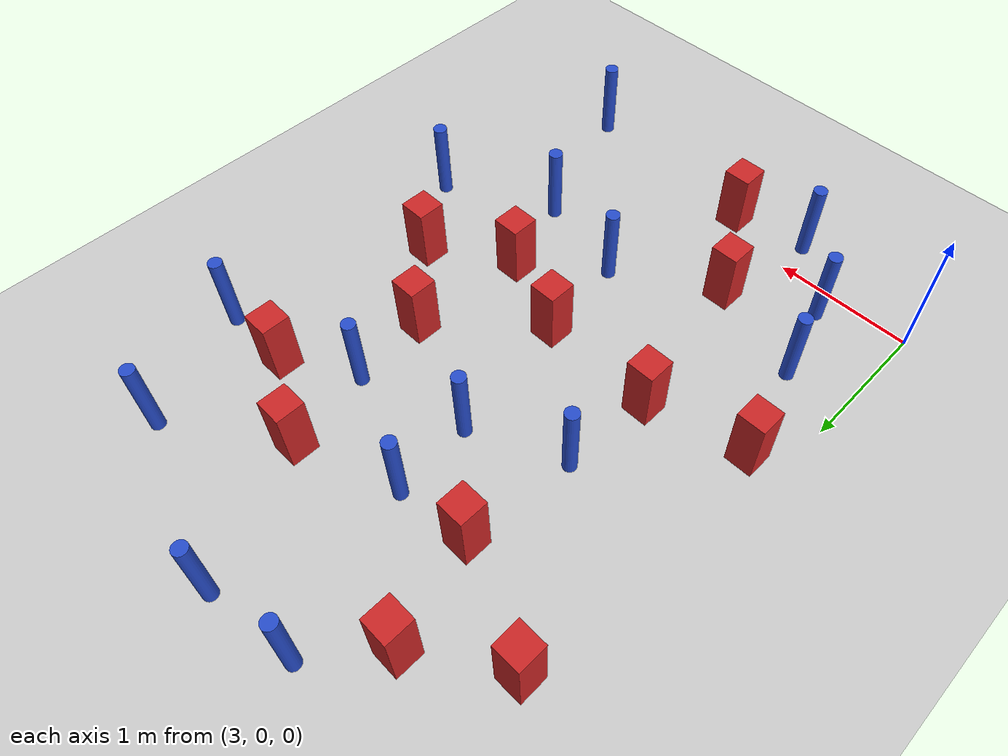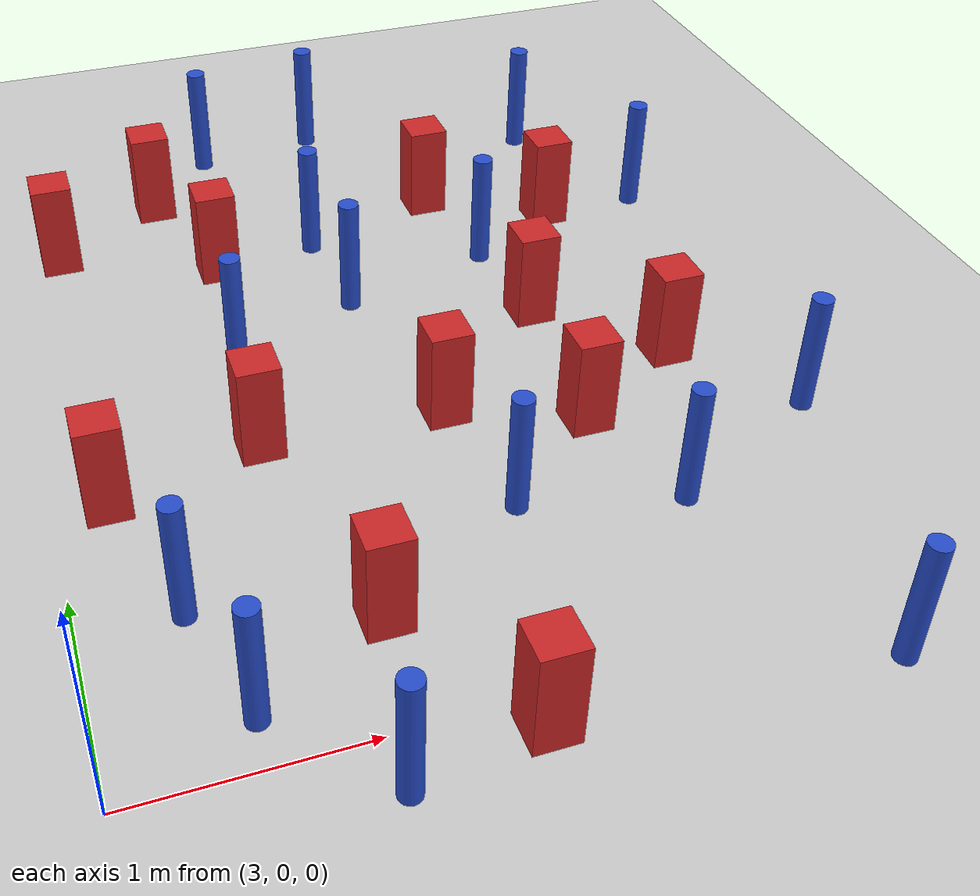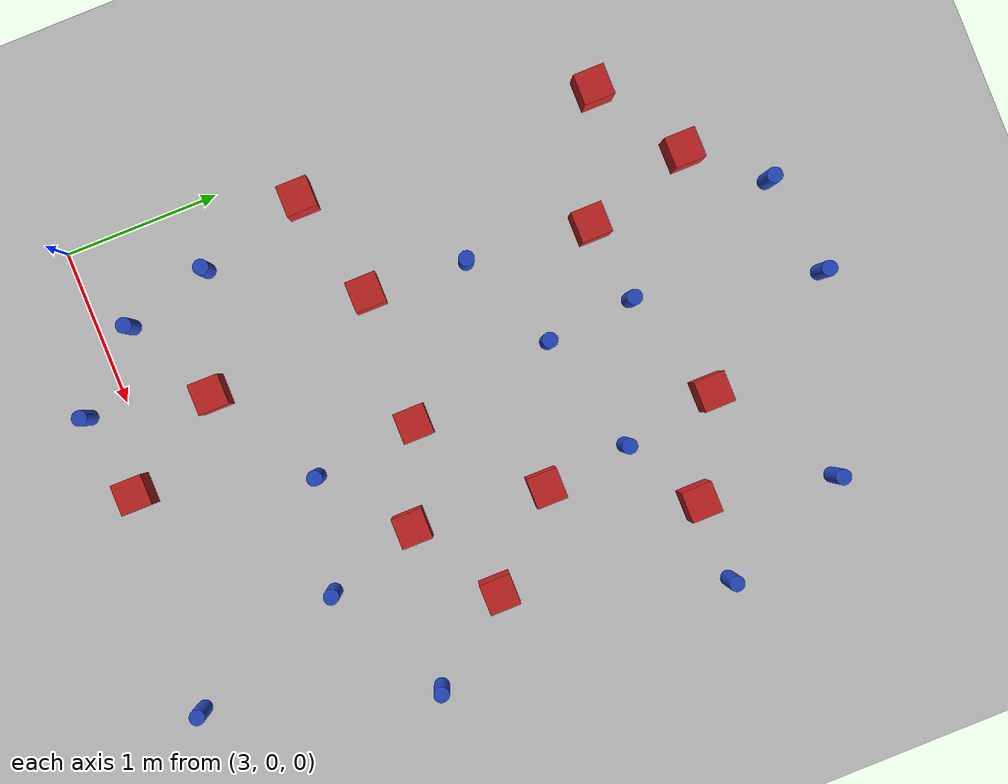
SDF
<sdf version="1.6">
 <world name="default">
  <model name="ground_plane">
   <static>1</static>
   <link name="link">
    <collision name="collision">
     <geometry><plane><normal>0 0 1</normal><size>100 100</size></plane></geometry>
     <surface><friction><ode><mu>100</mu><mu2>50</mu2></ode></friction></surface>
    </collision>
    <visual name="visual">
     <cast_shadows>0</cast_shadows>
     <geometry><plane><normal>0 0 1</normal><size>100 100</size></plane></geometry>
     <material>
      <ambient>1.0 1.0 1.0 1.0</ambient>
      <diffuse>0.8 0.8 0.8 1.0</diffuse>
      <specular>0.01 0.01 0.01 1.000000</specular>
     </material>
    </visual>
   </link>
  </model>
  <model name="pole_obstacle1">
   <static>true</static>
   <pose>5.58992759345 0.771042951277 -3.09024884793e-07 -7.19054271912e-07 -2.11315075134e-07 -1.93935509265e-07</pose>
   <link name="link">
    <pose>0 0 0.3 0 -0 0</pose>
    <inertial>
     <mass>1</mass>
     <inertia><ixx>0.145833</ixx><ixy>0</ixy><ixz>0</ixz><iyy>0.145833</iyy><iyz>0</iyz><izz>0.125</izz></inertia>
    </inertial>
    <collision name="collision">
     <geometry><cylinder><radius>0.05</radius><length>.6</length></cylinder></geometry>
    </collision>
    <visual name="visual">
     <geometry><cylinder><radius>0.05</radius><length>.6</length></cylinder></geometry>
     <material>
      <script><name>Gazebo/Blue</name><uri>file://media/materials/scripts/gazebo.material</uri></script>
     </material>
    </visual>
   </link>
  </model>
  <model name="square_post_obstacle13">
   <static>true</static>
   <pose>3.27607757877 3.43404862615 -4.36207812815e-07 3.75137919937e-06 9.77721102514e-07 2.47381364184e-05</pose>
   <link name="link">
    <pose>0 0 0.25 0 -0 0</pose>
    <inertial>
     <mass>100</mass>
     <inertia>
      <ixx>0.166667</ixx>
      <ixy>0</ixy>
      <ixz>0</ixz>
      <iyy>0.166667</iyy>
      <iyz>0</iyz>
      <izz>0.166667</izz>
     </inertia>
    </inertial>
    <collision name="collision"><geometry><box><size>.2 .2 .5</size></box></geometry></collision>
    <visual name="visual">
     <geometry><box><size>.2 .2 .5</size></box></geometry>
     <material>
      <script><name>Gazebo/Red</name><uri>file://media/materials/scripts/gazebo.material</uri></script>
     </material>
    </visual>
   </link>
  </model>
  <model name="pole_obstacle15">
   <static>true</static>
   <pose>6.39323773252 1.17414004297 -3.09024884793e-07 -7.19054271912e-07 -2.11315075124e-07 -1.93935509261e-07</pose>
   <link name="link">
    <pose>0 0 0.3 0 -0 0</pose>
    <inertial>
     <mass>1</mass>
     <inertia><ixx>0.145833</ixx><ixy>0</ixy><ixz>0</ixz><iyy>0.145833</iyy><iyz>0</iyz><izz>0.125</izz></inertia>
    </inertial>
    <collision name="collision">
     <geometry><cylinder><radius>0.05</radius><length>.6</length></cylinder></geometry>
    </collision>
    <visual name="visual">
     <geometry><cylinder><radius>0.05</radius><length>.6</length></cylinder></geometry>
     <material>
      <script><name>Gazebo/Blue</name><uri>file://media/materials/scripts/gazebo.material</uri></script>
     </material>
    </visual>
   </link>
  </model>
  <model name="square_post_obstacle31">
   <static>true</static>
   <pose>4.79556955324 1.62854520627 -4.36207812815e-07 3.75137919937e-06 9.77721102514e-07 2.47381364184e-05</pose>
   <link name="link">
    <pose>0 0 0.25 0 -0 0</pose>
    <inertial>
     <mass>100</mass>
     <inertia>
      <ixx>0.166667</ixx>
      <ixy>0</ixy>
      <ixz>0</ixz>
      <iyy>0.166667</iyy>
      <iyz>0</iyz>
      <izz>0.166667</izz>
     </inertia>
    </inertial>
    <collision name="collision"><geometry><box><size>.2 .2 .5</size></box></geometry></collision>
    <visual name="visual">
     <geometry><box><size>.2 .2 .5</size></box></geometry>
     <material>
      <script><name>Gazebo/Red</name><uri>file://media/materials/scripts/gazebo.material</uri></script>
     </material>
    </visual>
   </link>
  </model>
  <model name="pole_obstacle36">
   <static>true</static>
   <pose>4.86189972478 4.3403535434 -3.09024884793e-07 -7.19054271911e-07 -2.1131507516e-07 -1.93935509277e-07</pose>
   <link name="link">
    <pose>0 0 0.3 0 -0 0</pose>
    <inertial>
     <mass>1</mass>
     <inertia><ixx>0.145833</ixx><ixy>0</ixy><ixz>0</ixz><iyy>0.145833</iyy><iyz>0</iyz><izz>0.125</izz></inertia>
    </inertial>
    <collision name="collision">
     <geometry><cylinder><radius>0.05</radius><length>.6</length></cylinder></geometry>
    </collision>
    <visual name="visual">
     <geometry><cylinder><radius>0.05</radius><length>.6</length></cylinder></geometry>
     <material>
      <script><name>Gazebo/Blue</name><uri>file://media/materials/scripts/gazebo.material</uri></script>
     </material>
    </visual>
   </link>
  </model>
  <model name="square_post_obstacle36">
   <static>true</static>
   <pose>4.15909963592 0.525989410992 -4.36207812815e-07 3.75137919937e-06 9.77721102514e-07 2.47381364184e-05</pose>
   <link name="link">
    <pose>0 0 0.25 0 -0 0</pose>
    <inertial>
     <mass>100</mass>
     <inertia>
      <ixx>0.166667</ixx>
      <ixy>0</ixy>
      <ixz>0</ixz>
      <iyy>0.166667</iyy>
      <iyz>0</iyz>
      <izz>0.166667</izz>
     </inertia>
    </inertial>
    <collision name="collision"><geometry><box><size>.2 .2 .5</size></box></geometry></collision>
    <visual name="visual">
     <geometry><box><size>.2 .2 .5</size></box></geometry>
     <material>
      <script><name>Gazebo/Red</name><uri>file://media/materials/scripts/gazebo.material</uri></script>
     </material>
    </visual>
   </link>
  </model>
  <model name="pole_obstacle38">
   <static>true</static>
   <pose>4.20906245238 4.24223437994 -3.09024884793e-07 -7.19054271911e-07 -2.1131507516e-07 -1.93935509277e-07</pose>
   <link name="link">
    <pose>0 0 0.3 0 -0 0</pose>
    <inertial>
     <mass>1</mass>
     <inertia><ixx>0.145833</ixx><ixy>0</ixy><ixz>0</ixz><iyy>0.145833</iyy><iyz>0</iyz><izz>0.125</izz></inertia>
    </inertial>
    <collision name="collision">
     <geometry><cylinder><radius>0.05</radius><length>.6</length></cylinder></geometry>
    </collision>
    <visual name="visual">
     <geometry><cylinder><radius>0.05</radius><length>.6</length></cylinder></geometry>
     <material>
      <script><name>Gazebo/Blue</name><uri>file://media/materials/scripts/gazebo.material</uri></script>
     </material>
    </visual>
   </link>
  </model>
  <model name="square_post_obstacle41">
   <static>true</static>
   <pose>3.23152151646 1.48305024463 -4.36207812815e-07 3.75137919937e-06 9.77721102514e-07 2.47381364184e-05</pose>
   <link name="link">
    <pose>0 0 0.25 0 -0 0</pose>
    <inertial>
     <mass>100</mass>
     <inertia>
      <ixx>0.166667</ixx>
      <ixy>0</ixy>
      <ixz>0</ixz>
      <iyy>0.166667</iyy>
      <iyz>0</iyz>
      <izz>0.166667</izz>
     </inertia>
    </inertial>
    <collision name="collision"><geometry><box><size>.2 .2 .5</size></box></geometry></collision>
    <visual name="visual">
     <geometry><box><size>.2 .2 .5</size></box></geometry>
     <material>
      <script><name>Gazebo/Red</name><uri>file://media/materials/scripts/gazebo.material</uri></script>
     </material>
    </visual>
   </link>
  </model>
  <model name="square_post_obstacle44">
   <static>true</static>
   <pose>4.556816064 -0.141495539214 -4.36207812815e-07 3.75137919937e-06 9.77721102514e-07 2.47381364184e-05</pose>
   <link name="link">
    <pose>0 0 0.25 0 -0 0</pose>
    <inertial>
     <mass>100</mass>
     <inertia>
      <ixx>0.166667</ixx>
      <ixy>0</ixy>
      <ixz>0</ixz>
      <iyy>0.166667</iyy>
      <iyz>0</iyz>
      <izz>0.166667</izz>
     </inertia>
    </inertial>
    <collision name="collision"><geometry><box><size>.2 .2 .5</size></box></geometry></collision>
    <visual name="visual">
     <geometry><box><size>.2 .2 .5</size></box></geometry>
     <material>
      <script><name>Gazebo/Red</name><uri>file://media/materials/scripts/gazebo.material</uri></script>
     </material>
    </visual>
   </link>
  </model>
  <model name="pole_obstacle53">
   <static>true</static>
   <pose>3.98057424473 2.30687734638 -3.09024884793e-07 -7.19054271912e-07 -2.11315075162e-07 -1.93935509281e-07</pose>
   <link name="link">
    <pose>0 0 0.3 0 -0 0</pose>
    <inertial>
     <mass>1</mass>
     <inertia><ixx>0.145833</ixx><ixy>0</ixy><ixz>0</ixz><iyy>0.145833</iyy><iyz>0</iyz><izz>0.125</izz></inertia>
    </inertial>
    <collision name="collision">
     <geometry><cylinder><radius>0.05</radius><length>.6</length></cylinder></geometry>
    </collision>
    <visual name="visual">
     <geometry><cylinder><radius>0.05</radius><length>.6</length></cylinder></geometry>
     <material>
      <script><name>Gazebo/Blue</name><uri>file://media/materials/scripts/gazebo.material</uri></script>
     </material>
    </visual>
   </link>
  </model>
  <model name="square_post_obstacle61">
   <static>true</static>
   <pose>3.84370409949 3.80862990596 -4.36207812815e-07 3.75137919937e-06 9.77721102514e-07 2.47381364184e-05</pose>
   <link name="link">
    <pose>0 0 0.25 0 -0 0</pose>
    <inertial>
     <mass>100</mass>
     <inertia>
      <ixx>0.166667</ixx>
      <ixy>0</ixy>
      <ixz>0</ixz>
      <iyy>0.166667</iyy>
      <iyz>0</iyz>
      <izz>0.166667</izz>
     </inertia>
    </inertial>
    <collision name="collision"><geometry><box><size>.2 .2 .5</size></box></geometry></collision>
    <visual name="visual">
     <geometry><box><size>.2 .2 .5</size></box></geometry>
     <material>
      <script><name>Gazebo/Red</name><uri>file://media/materials/scripts/gazebo.material</uri></script>
     </material>
    </visual>
   </link>
  </model>
  <model name="pole_obstacle58">
   <static>true</static>
   <pose>4.87939695554 0.945920177138 -3.09024884793e-07 -7.19054271912e-07 -2.11315075134e-07 -1.93935509265e-07</pose>
   <link name="link">
    <pose>0 0 0.3 0 -0 0</pose>
    <inertial>
     <mass>1</mass>
     <inertia><ixx>0.145833</ixx><ixy>0</ixy><ixz>0</ixz><iyy>0.145833</iyy><iyz>0</iyz><izz>0.125</izz></inertia>
    </inertial>
    <collision name="collision">
     <geometry><cylinder><radius>0.05</radius><length>.6</length></cylinder></geometry>
    </collision>
    <visual name="visual">
     <geometry><cylinder><radius>0.05</radius><length>.6</length></cylinder></geometry>
     <material>
      <script><name>Gazebo/Blue</name><uri>file://media/materials/scripts/gazebo.material</uri></script>
     </material>
    </visual>
   </link>
  </model>
  <model name="pole_obstacle66">
   <static>true</static>
   <pose>4.58161983679 3.17085954249 -3.09024884793e-07 -7.19054271912e-07 -2.11315075144e-07 -1.93935509269e-07</pose>
   <link name="link">
    <pose>0 0 0.3 0 -0 0</pose>
    <inertial>
     <mass>1</mass>
     <inertia><ixx>0.145833</ixx><ixy>0</ixy><ixz>0</ixz><iyy>0.145833</iyy><iyz>0</iyz><izz>0.125</izz></inertia>
    </inertial>
    <collision name="collision">
     <geometry><cylinder><radius>0.05</radius><length>.6</length></cylinder></geometry>
    </collision>
    <visual name="visual">
     <geometry><cylinder><radius>0.05</radius><length>.6</length></cylinder></geometry>
     <material>
      <script><name>Gazebo/Blue</name><uri>file://media/materials/scripts/gazebo.material</uri></script>
     </material>
    </visual>
   </link>
  </model>
  <model name="square_post_obstacle74">
   <static>true</static>
   <pose>5.39063758483 1.37951681456 -4.36207812815e-07 3.75137919937e-06 9.77721102514e-07 2.47381364184e-05</pose>
   <link name="link">
    <pose>0 0 0.25 0 -0 0</pose>
    <inertial>
     <mass>100</mass>
     <inertia>
      <ixx>0.166667</ixx>
      <ixy>0</ixy>
      <ixz>0</ixz>
      <iyy>0.166667</iyy>
      <iyz>0</iyz>
      <izz>0.166667</izz>
     </inertia>
    </inertial>
    <collision name="collision"><geometry><box><size>.2 .2 .5</size></box></geometry></collision>
    <visual name="visual">
     <geometry><box><size>.2 .2 .5</size></box></geometry>
     <material>
      <script><name>Gazebo/Red</name><uri>file://media/materials/scripts/gazebo.material</uri></script>
     </material>
    </visual>
   </link>
  </model>
  <model name="pole_obstacle72">
   <static>true</static>
   <pose>5.96688714051 -0.261945953001 -3.09024884793e-07 -7.19054271912e-07 -2.1131507512e-07 -1.93935509259e-07</pose>
   <link name="link">
    <pose>0 0 0.3 0 -0 0</pose>
    <inertial>
     <mass>1</mass>
     <inertia><ixx>0.145833</ixx><ixy>0</ixy><ixz>0</ixz><iyy>0.145833</iyy><iyz>0</iyz><izz>0.125</izz></inertia>
    </inertial>
    <collision name="collision">
     <geometry><cylinder><radius>0.05</radius><length>.6</length></cylinder></geometry>
    </collision>
    <visual name="visual">
     <geometry><cylinder><radius>0.05</radius><length>.6</length></cylinder></geometry>
     <material>
      <script><name>Gazebo/Blue</name><uri>file://media/materials/scripts/gazebo.material</uri></script>
     </material>
    </visual>
   </link>
  </model>
  <model name="square_post_obstacle82">
   <static>true</static>
   <pose>5.46969585893 2.24189731197 -4.36207812815e-07 3.75137919937e-06 9.77721102514e-07 2.47381364184e-05</pose>
   <link name="link">
    <pose>0 0 0.25 0 -0 0</pose>
    <inertial>
     <mass>100</mass>
     <inertia>
      <ixx>0.166667</ixx>
      <ixy>0</ixy>
      <ixz>0</ixz>
      <iyy>0.166667</iyy>
      <iyz>0</iyz>
      <izz>0.166667</izz>
     </inertia>
    </inertial>
    <collision name="collision"><geometry><box><size>.2 .2 .5</size></box></geometry></collision>
    <visual name="visual">
     <geometry><box><size>.2 .2 .5</size></box></geometry>
     <material>
      <script><name>Gazebo/Red</name><uri>file://media/materials/scripts/gazebo.material</uri></script>
     </material>
    </visual>
   </link>
  </model>
  <model name="square_post_obstacle88">
   <static>true</static>
   <pose>3.9352729879 1.65612882925 -4.36207812815e-07 3.75137919937e-06 9.77721102514e-07 2.47381364184e-05</pose>
   <link name="link">
    <pose>0 0 0.25 0 -0 0</pose>
    <inertial>
     <mass>100</mass>
     <inertia>
      <ixx>0.166667</ixx>
      <ixy>0</ixy>
      <ixz>0</ixz>
      <iyy>0.166667</iyy>
      <iyz>0</iyz>
      <izz>0.166667</izz>
     </inertia>
    </inertial>
    <collision name="collision"><geometry><box><size>.2 .2 .5</size></box></geometry></collision>
    <visual name="visual">
     <geometry><box><size>.2 .2 .5</size></box></geometry>
     <material>
      <script><name>Gazebo/Red</name><uri>file://media/materials/scripts/gazebo.material</uri></script>
     </material>
    </visual>
   </link>
  </model>
  <model name="square_post_obstacle95">
   <static>true</static>
   <pose>5.3009375738 3.41798213768 -4.36207812815e-07 3.75137919937e-06 9.77721102514e-07 2.47381364184e-05</pose>
   <link name="link">
    <pose>0 0 0.25 0 -0 0</pose>
    <inertial>
     <mass>100</mass>
     <inertia>
      <ixx>0.166667</ixx>
      <ixy>0</ixy>
      <ixz>0</ixz>
      <iyy>0.166667</iyy>
      <iyz>0</iyz>
      <izz>0.166667</izz>
     </inertia>
    </inertial>
    <collision name="collision"><geometry><box><size>.2 .2 .5</size></box></geometry></collision>
    <visual name="visual">
     <geometry><box><size>.2 .2 .5</size></box></geometry>
     <material>
      <script><name>Gazebo/Red</name><uri>file://media/materials/scripts/gazebo.material</uri></script>
     </material>
    </visual>
   </link>
  </model>
  <model name="pole_obstacle108">
   <static>true</static>
   <pose>6.4364949122 3.09810819985 -3.09024884793e-07 -7.19054271912e-07 -2.11315075144e-07 -1.93935509269e-07</pose>
   <link name="link">
    <pose>0 0 0.3 0 -0 0</pose>
    <inertial>
     <mass>1</mass>
     <inertia><ixx>0.145833</ixx><ixy>0</ixy><ixz>0</ixz><iyy>0.145833</iyy><iyz>0</iyz><izz>0.125</izz></inertia>
    </inertial>
    <collision name="collision">
     <geometry><cylinder><radius>0.05</radius><length>.6</length></cylinder></geometry>
    </collision>
    <visual name="visual">
     <geometry><cylinder><radius>0.05</radius><length>.6</length></cylinder></geometry>
     <material>
      <script><name>Gazebo/Blue</name><uri>file://media/materials/scripts/gazebo.material</uri></script>
     </material>
    </visual>
   </link>
  </model>
  <model name="square_post_obstacle96">
   <static>true</static>
   <pose>5.9679975727 1.73093672961 -4.36207812815e-07 3.75137919937e-06 9.77721102514e-07 2.47381364184e-05</pose>
   <link name="link">
    <pose>0 0 0.25 0 -0 0</pose>
    <inertial>
     <mass>100</mass>
     <inertia>
      <ixx>0.166667</ixx>
      <ixy>0</ixy>
      <ixz>0</ixz>
      <iyy>0.166667</iyy>
      <iyz>0</iyz>
      <izz>0.166667</izz>
     </inertia>
    </inertial>
    <collision name="collision"><geometry><box><size>.2 .2 .5</size></box></geometry></collision>
    <visual name="visual">
     <geometry><box><size>.2 .2 .5</size></box></geometry>
     <material>
      <script><name>Gazebo/Red</name><uri>file://media/materials/scripts/gazebo.material</uri></script>
     </material>
    </visual>
   </link>
  </model>
  <model name="square_post_obstacle127">
   <static>true</static>
   <pose>5.90309375543 3.09312610509 -4.36207812815e-07 3.75137919937e-06 9.77721102514e-07 2.47381364184e-05</pose>
   <link name="link">
    <pose>0 0 0.25 0 -0 0</pose>
    <inertial>
     <mass>100</mass>
     <inertia>
      <ixx>0.166667</ixx>
      <ixy>0</ixy>
      <ixz>0</ixz>
      <iyy>0.166667</iyy>
      <iyz>0</iyz>
      <izz>0.166667</izz>
     </inertia>
    </inertial>
    <collision name="collision"><geometry><box><size>.2 .2 .5</size></box></geometry></collision>
    <visual name="visual">
     <geometry><box><size>.2 .2 .5</size></box></geometry>
     <material>
      <script><name>Gazebo/Red</name><uri>file://media/materials/scripts/gazebo.material</uri></script>
     </material>
    </visual>
   </link>
  </model>
  <model name="pole_obstacle148">
   <static>true</static>
   <pose>4.63346478088 2.59417303646 -3.09024884793e-07 -7.19054271912e-07 -2.11315075144e-07 -1.93935509269e-07</pose>
   <link name="link">
    <pose>0 0 0.3 0 -0 0</pose>
    <inertial>
     <mass>1</mass>
     <inertia><ixx>0.145833</ixx><ixy>0</ixy><ixz>0</ixz><iyy>0.145833</iyy><iyz>0</iyz><izz>0.125</izz></inertia>
    </inertial>
    <collision name="collision">
     <geometry><cylinder><radius>0.05</radius><length>.6</length></cylinder></geometry>
    </collision>
    <visual name="visual">
     <geometry><cylinder><radius>0.05</radius><length>.6</length></cylinder></geometry>
     <material>
      <script><name>Gazebo/Blue</name><uri>file://media/materials/scripts/gazebo.material</uri></script>
     </material>
    </visual>
   </link>
  </model>
  <model name="pole_obstacle157">
   <static>true</static>
   <pose>3.57901939438 0.213476796068 -3.09024884793e-07 -7.19054271912e-07 -2.11315075123e-07 -1.9393550926e-07</pose>
   <link name="link">
    <pose>0 0 0.3 0 -0 0</pose>
    <inertial>
     <mass>1</mass>
     <inertia><ixx>0.145833</ixx><ixy>0</ixy><ixz>0</ixz><iyy>0.145833</iyy><iyz>0</iyz><izz>0.125</izz></inertia>
    </inertial>
    <collision name="collision">
     <geometry><cylinder><radius>0.05</radius><length>.6</length></cylinder></geometry>
    </collision>
    <visual name="visual">
     <geometry><cylinder><radius>0.05</radius><length>.6</length></cylinder></geometry>
     <material>
      <script><name>Gazebo/Blue</name><uri>file://media/materials/scripts/gazebo.material</uri></script>
     </material>
    </visual>
   </link>
  </model>
  <model name="pole_obstacle161">
   <static>true</static>
   <pose>5.41454715701 2.80429465588 -3.09024884793e-07 -7.19054271912e-07 -2.11315075144e-07 -1.93935509269e-07</pose>
   <link name="link">
    <pose>0 0 0.3 0 -0 0</pose>
    <inertial>
     <mass>1</mass>
     <inertia><ixx>0.145833</ixx><ixy>0</ixy><ixz>0</ixz><iyy>0.145833</iyy><iyz>0</iyz><izz>0.125</izz></inertia>
    </inertial>
    <collision name="collision">
     <geometry><cylinder><radius>0.05</radius><length>.6</length></cylinder></geometry>
    </collision>
    <visual name="visual">
     <geometry><cylinder><radius>0.05</radius><length>.6</length></cylinder></geometry>
     <material>
      <script><name>Gazebo/Blue</name><uri>file://media/materials/scripts/gazebo.material</uri></script>
     </material>
    </visual>
   </link>
  </model>
  <model name="square_post_obstacle168">
   <static>true</static>
   <pose>4.05459076122 3.10582809153 -4.36207812815e-07 3.75137919937e-06 9.77721102514e-07 2.47381364184e-05</pose>
   <link name="link">
    <pose>0 0 0.25 0 -0 0</pose>
    <inertial>
     <mass>100</mass>
     <inertia>
      <ixx>0.166667</ixx>
      <ixy>0</ixy>
      <ixz>0</ixz>
      <iyy>0.166667</iyy>
      <iyz>0</iyz>
      <izz>0.166667</izz>
     </inertia>
    </inertial>
    <collision name="collision"><geometry><box><size>.2 .2 .5</size></box></geometry></collision>
    <visual name="visual">
     <geometry><box><size>.2 .2 .5</size></box></geometry>
     <material>
      <script><name>Gazebo/Red</name><uri>file://media/materials/scripts/gazebo.material</uri></script>
     </material>
    </visual>
   </link>
  </model>
  <model name="pole_obstacle184">
   <static>true</static>
   <pose>4.00522633401 -0.247419083027 -3.09024884793e-07 -7.19054271912e-07 -2.11315075129e-07 -1.93935509263e-07</pose>
   <link name="link">
    <pose>0 0 0.3 0 -0 0</pose>
    <inertial>
     <mass>1</mass>
     <inertia><ixx>0.145833</ixx><ixy>0</ixy><ixz>0</ixz><iyy>0.145833</iyy><iyz>0</iyz><izz>0.125</izz></inertia>
    </inertial>
    <collision name="collision">
     <geometry><cylinder><radius>0.05</radius><length>.6</length></cylinder></geometry>
    </collision>
    <visual name="visual">
     <geometry><cylinder><radius>0.05</radius><length>.6</length></cylinder></geometry>
     <material>
      <script><name>Gazebo/Blue</name><uri>file://media/materials/scripts/gazebo.material</uri></script>
     </material>
    </visual>
   </link>
  </model>
  <model name="pole_obstacle188">
   <static>true</static>
   <pose>3.42457672335 0.781788411174 -3.09024884793e-07 -7.19054271913e-07 -2.1131507512e-07 -1.93935509259e-07</pose>
   <link name="link">
    <pose>0 0 0.3 0 -0 0</pose>
    <inertial>
     <mass>1</mass>
     <inertia><ixx>0.145833</ixx><ixy>0</ixy><ixz>0</ixz><iyy>0.145833</iyy><iyz>0</iyz><izz>0.125</izz></inertia>
    </inertial>
    <collision name="collision">
     <geometry><cylinder><radius>0.05</radius><length>.6</length></cylinder></geometry>
    </collision>
    <visual name="visual">
     <geometry><cylinder><radius>0.05</radius><length>.6</length></cylinder></geometry>
     <material>
      <script><name>Gazebo/Blue</name><uri>file://media/materials/scripts/gazebo.material</uri></script>
     </material>
    </visual>
   </link>
  </model>
  <model name="pole_obstacle190">
   <static>true</static>
   <pose>6.0757593087 3.94373623608 -3.09024884793e-07 -7.19054271912e-07 -2.11315075144e-07 -1.93935509269e-07</pose>
   <link name="link">
    <pose>0 0 0.3 0 -0 0</pose>
    <inertial>
     <mass>1</mass>
     <inertia><ixx>0.145833</ixx><ixy>0</ixy><ixz>0</ixz><iyy>0.145833</iyy><iyz>0</iyz><izz>0.125</izz></inertia>
    </inertial>
    <collision name="collision">
     <geometry><cylinder><radius>0.05</radius><length>.6</length></cylinder></geometry>
    </collision>
    <visual name="visual">
     <geometry><cylinder><radius>0.05</radius><length>.6</length></cylinder></geometry>
     <material>
      <script><name>Gazebo/Blue</name><uri>file://media/materials/scripts/gazebo.material</uri></script>
     </material>
    </visual>
   </link>
  </model>
 </world>
</sdf>
